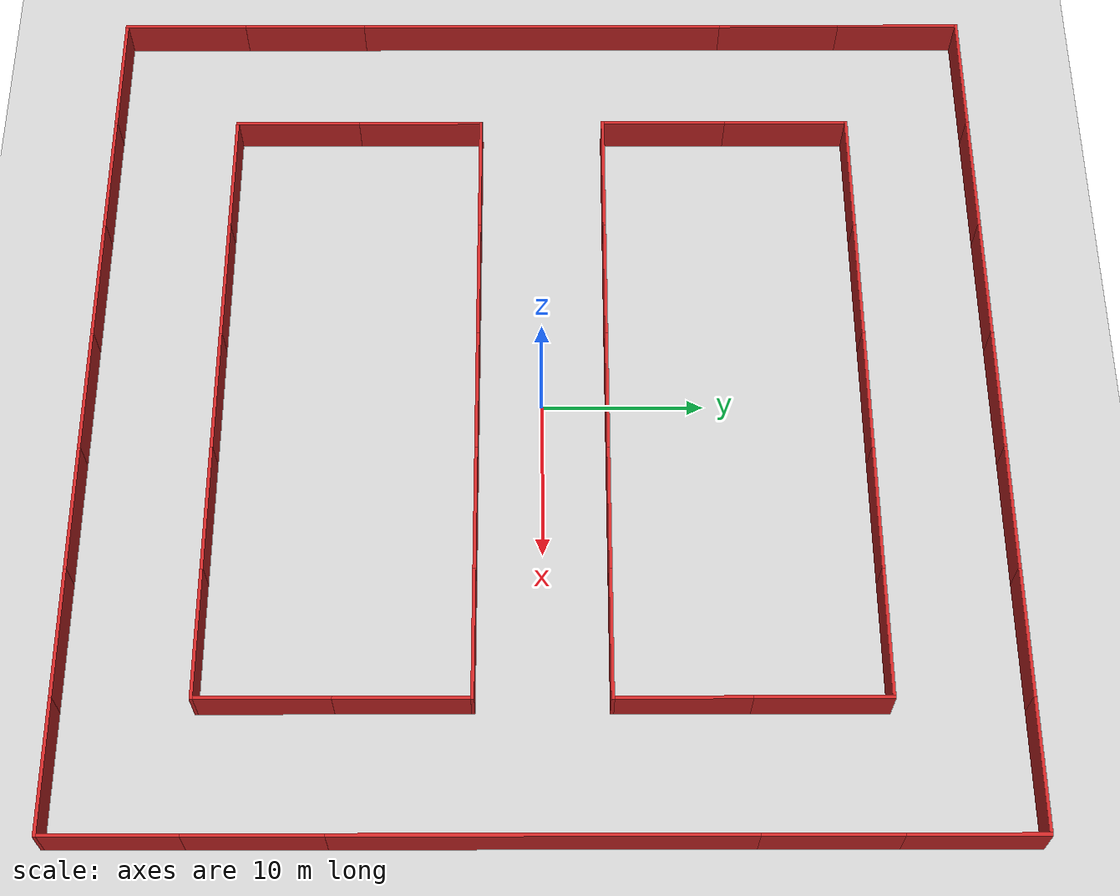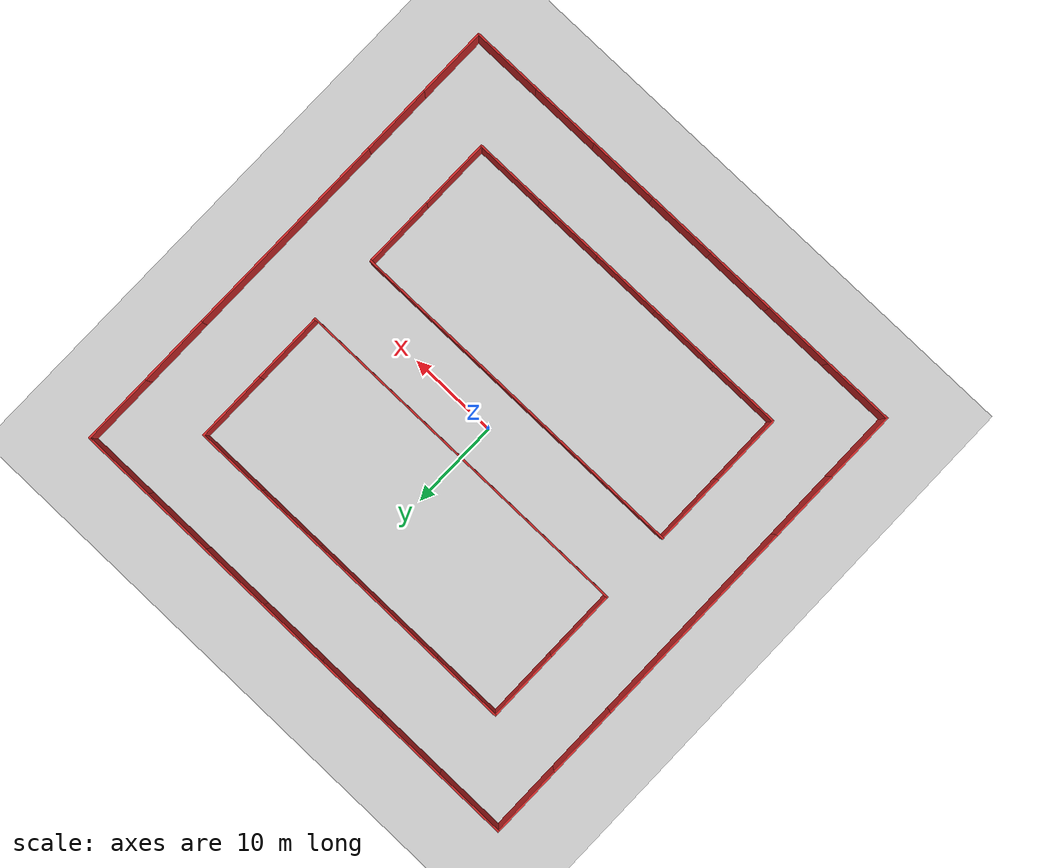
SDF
<sdf version="1.4">
 <world name="default">
  <light name="sun" type="directional">
   <pose>0 0 10 0 -0 0</pose>
   <diffuse>0.8 0.8 0.8 1</diffuse>
   <specular>0.2 0.2 0.2 1</specular>
   <attenuation>
    <range>1000</range>
    <constant>0.9</constant>
    <linear>0.01</linear>
    <quadratic>0.001</quadratic>
   </attenuation>
   <direction>-0.5 0.1 -0.9</direction>
  </light>
  <model name="ground_plane">
   <static>1</static>
   <link name="link">
    <collision name="collision">
     <geometry><plane><normal>0 0 1</normal><size>100 100</size></plane></geometry>
     <surface><friction><ode><mu>100</mu><mu2>50</mu2></ode></friction></surface>
    </collision>
    <visual name="visual">
     <cast_shadows>0</cast_shadows>
     <geometry><plane><normal>0 0 1</normal><size>100 100</size></plane></geometry>
     <material>
      <script><uri>file://media/materials/scripts/gazebo.material</uri><name>Gazebo/Grey</name></script>
     </material>
    </visual>
    <velocity_decay><linear>0</linear><angular>0</angular></velocity_decay>
   </link>
  </model>
  <physics type="ode">
   <max_step_size>0.001</max_step_size>
   <real_time_factor>1</real_time_factor>
   <real_time_update_rate>1000</real_time_update_rate>
   <gravity>0 0 -9.8</gravity>
  </physics>
  <scene><ambient>0.4 0.4 0.4 1</ambient><background>0.7 0.7 0.7 1</background><shadows>1</shadows></scene>
  <spherical_coordinates>
   <surface_model>EARTH_WGS84</surface_model>
   <latitude_deg>0</latitude_deg>
   <longitude_deg>0</longitude_deg>
   <elevation>0</elevation>
   <heading_deg>0</heading_deg>
  </spherical_coordinates>
  <model name="staright_8m">
   <link name="Wall_26">
    <collision name="Wall_26_Collision">
     <geometry><box><size>8 0.2 2.5</size></box></geometry>
     <pose>0 0 1.25 0 -0 0</pose>
    </collision>
    <visual name="Wall_26_Visual">
     <pose>0 0 1.25 0 -0 0</pose>
     <geometry><box><size>8 0.2 2.5</size></box></geometry>
     <material>
      <script>
       <uri>model://materials/scripts</uri>
       <uri>model://materials/textures</uri>
       <name>vrc/red_wall</name>
      </script>
     </material>
    </visual>
    <velocity_decay><linear>0</linear><angular>0</angular></velocity_decay>
    <pose>0 -4 0 0 -0 0</pose>
   </link>
   <link name="Wall_28">
    <collision name="Wall_28_Collision">
     <geometry><box><size>8 0.2 2.5</size></box></geometry>
     <pose>0 0 1.25 0 -0 0</pose>
    </collision>
    <visual name="Wall_28_Visual">
     <pose>0 0 1.25 0 -0 0</pose>
     <geometry><box><size>8 0.2 2.5</size></box></geometry>
     <material>
      <script>
       <uri>model://materials/scripts</uri>
       <uri>model://materials/textures</uri>
       <name>vrc/red_wall</name>
      </script>
     </material>
    </visual>
    <velocity_decay><linear>0</linear><angular>0</angular></velocity_decay>
    <pose>0 4 0 0 -0 0</pose>
   </link>
   <static>1</static>
  </model>
  <model name="staright_8m_0">
   <link name="Wall_26">
    <collision name="Wall_26_Collision">
     <geometry><box><size>8 0.2 2.5</size></box></geometry>
     <pose>0 0 1.25 0 -0 0</pose>
    </collision>
    <visual name="Wall_26_Visual">
     <pose>0 0 1.25 0 -0 0</pose>
     <geometry><box><size>8 0.2 2.5</size></box></geometry>
     <material>
      <script>
       <uri>model://materials/scripts</uri>
       <uri>model://materials/textures</uri>
       <name>vrc/red_wall</name>
      </script>
     </material>
    </visual>
    <velocity_decay><linear>0</linear><angular>0</angular></velocity_decay>
    <pose>0 -4 0 0 -0 0</pose>
   </link>
   <link name="Wall_28">
    <collision name="Wall_28_Collision">
     <geometry><box><size>8 0.2 2.5</size></box></geometry>
     <pose>0 0 1.25 0 -0 0</pose>
    </collision>
    <visual name="Wall_28_Visual">
     <pose>0 0 1.25 0 -0 0</pose>
     <geometry><box><size>8 0.2 2.5</size></box></geometry>
     <material>
      <script>
       <uri>model://materials/scripts</uri>
       <uri>model://materials/textures</uri>
       <name>vrc/red_wall</name>
      </script>
     </material>
    </visual>
    <velocity_decay><linear>0</linear><angular>0</angular></velocity_decay>
    <pose>0 4 0 0 -0 0</pose>
   </link>
   <static>1</static>
   <pose>8 0 0 0 -0 0</pose>
  </model>
  <model name="model_1">
   <link name="Wall_1">
    <collision name="Wall_1_Collision">
     <geometry><box><size>24 0.2 2.5</size></box></geometry>
     <pose>0 0 1.25 0 -0 0</pose>
    </collision>
    <visual name="Wall_1_Visual">
     <pose>0 0 1.25 0 -0 0</pose>
     <geometry><box><size>24 0.2 2.5</size></box></geometry>
     <material>
      <script>
       <uri>model://materials/scripts</uri>
       <uri>model://materials/textures</uri>
       <name>vrc/red_wall</name>
      </script>
     </material>
    </visual>
    <velocity_decay><linear>0</linear><angular>0</angular></velocity_decay>
    <pose>0 8 0 0 -0 0</pose>
   </link>
   <link name="Wall_11">
    <collision name="Wall_11_Collision">
     <geometry><box><size>8.1 0.2 2.5</size></box></geometry>
     <pose>0 0 1.25 0 -0 0</pose>
    </collision>
    <visual name="Wall_11_Visual">
     <pose>0 0 1.25 0 -0 0</pose>
     <geometry><box><size>8.1 0.2 2.5</size></box></geometry>
     <material>
      <script>
       <uri>model://materials/scripts</uri>
       <uri>model://materials/textures</uri>
       <name>vrc/red_wall</name>
      </script>
     </material>
    </visual>
    <velocity_decay><linear>0</linear><angular>0</angular></velocity_decay>
    <pose>-4 -3.95 0 0 0 -1.5708</pose>
   </link>
   <link name="Wall_13">
    <collision name="Wall_13_Collision">
     <geometry><box><size>8.1 0.2 2.5</size></box></geometry>
     <pose>0 0 1.25 0 -0 0</pose>
    </collision>
    <visual name="Wall_13_Visual">
     <pose>0 0 1.25 0 -0 0</pose>
     <geometry><box><size>8.1 0.2 2.5</size></box></geometry>
     <material>
      <script>
       <uri>model://materials/scripts</uri>
       <uri>model://materials/textures</uri>
       <name>vrc/red_wall</name>
      </script>
     </material>
    </visual>
    <velocity_decay><linear>0</linear><angular>0</angular></velocity_decay>
    <pose>4 -3.95 0 0 0 -1.5708</pose>
   </link>
   <link name="Wall_15">
    <collision name="Wall_15_Collision">
     <geometry><box><size>7.9 0.2 2.5</size></box></geometry>
     <pose>0 0 1.25 0 -0 0</pose>
    </collision>
    <visual name="Wall_15_Visual">
     <pose>0 0 1.25 0 -0 0</pose>
     <geometry><box><size>7.9 0.2 2.5</size></box></geometry>
     <material>
      <script>
       <uri>model://materials/scripts</uri>
       <uri>model://materials/textures</uri>
       <name>vrc/red_wall</name>
      </script>
     </material>
    </visual>
    <velocity_decay><linear>0</linear><angular>0</angular></velocity_decay>
    <pose>8.05 0 0 0 -0 0</pose>
   </link>
   <link name="Wall_9">
    <collision name="Wall_9_Collision">
     <geometry><box><size>7.9 0.2 2.5</size></box></geometry>
     <pose>0 0 1.25 0 -0 0</pose>
    </collision>
    <visual name="Wall_9_Visual">
     <pose>0 0 1.25 0 -0 0</pose>
     <geometry><box><size>7.9 0.2 2.5</size></box></geometry>
     <material>
      <script>
       <uri>model://materials/scripts</uri>
       <uri>model://materials/textures</uri>
       <name>vrc/red_wall</name>
      </script>
     </material>
    </visual>
    <velocity_decay><linear>0</linear><angular>0</angular></velocity_decay>
    <pose>-8.05 0 0 0 -0 0</pose>
   </link>
   <static>1</static>
   <pose>20 0 0 0 0 -1.5708</pose>
  </model>
  <model name="model_2">
   <link name="Wall_10">
    <collision name="Wall_10_Collision">
     <geometry><box><size>8.1 0.2 2.5</size></box></geometry>
     <pose>0 0 1.25 0 -0 0</pose>
    </collision>
    <visual name="Wall_10_Visual">
     <pose>0 0 1.25 0 -0 0</pose>
     <geometry><box><size>8.1 0.2 2.5</size></box></geometry>
     <material>
      <script>
       <uri>model://materials/scripts</uri>
       <uri>model://materials/textures</uri>
       <name>vrc/red_wall</name>
      </script>
     </material>
    </visual>
    <velocity_decay><linear>0</linear><angular>0</angular></velocity_decay>
    <pose>4.05 -8 0 0 -0 0</pose>
   </link>
   <link name="Wall_14">
    <collision name="Wall_14_Collision">
     <geometry><box><size>7.9 0.2 2.5</size></box></geometry>
     <pose>0 0 1.25 0 -0 0</pose>
    </collision>
    <visual name="Wall_14_Visual">
     <pose>0 0 1.25 0 -0 0</pose>
     <geometry><box><size>7.9 0.2 2.5</size></box></geometry>
     <material>
      <script>
       <uri>model://materials/scripts</uri>
       <uri>model://materials/textures</uri>
       <name>vrc/red_wall</name>
      </script>
     </material>
    </visual>
    <velocity_decay><linear>0</linear><angular>0</angular></velocity_decay>
    <pose>8 -3.95 0 0 -0 1.5708</pose>
   </link>
   <link name="Wall_16">
    <collision name="Wall_16_Collision">
     <geometry><box><size>8 0.2 2.5</size></box></geometry>
     <pose>0 0 1.25 0 -0 0</pose>
    </collision>
    <visual name="Wall_16_Visual">
     <pose>0 0 1.25 0 -0 0</pose>
     <geometry><box><size>8 0.2 2.5</size></box></geometry>
     <material>
      <script>
       <uri>model://materials/scripts</uri>
       <uri>model://materials/textures</uri>
       <name>vrc/red_wall</name>
      </script>
     </material>
    </visual>
    <velocity_decay><linear>0</linear><angular>0</angular></velocity_decay>
    <pose>8 4 0 0 -0 1.5708</pose>
   </link>
   <link name="Wall_18">
    <collision name="Wall_18_Collision">
     <geometry><box><size>8.1 0.2 2.5</size></box></geometry>
     <pose>0 0 1.25 0 -0 0</pose>
    </collision>
    <visual name="Wall_18_Visual">
     <pose>0 0 1.25 0 -0 0</pose>
     <geometry><box><size>8.1 0.2 2.5</size></box></geometry>
     <material>
      <script>
       <uri>model://materials/scripts</uri>
       <uri>model://materials/textures</uri>
       <name>vrc/red_wall</name>
      </script>
     </material>
    </visual>
    <velocity_decay><linear>0</linear><angular>0</angular></velocity_decay>
    <pose>-3.95 0 0 0 -0 0</pose>
   </link>
   <link name="Wall_20">
    <collision name="Wall_20_Collision">
     <geometry><box><size>7.9 0.2 2.5</size></box></geometry>
     <pose>0 0 1.25 0 -0 0</pose>
    </collision>
    <visual name="Wall_20_Visual">
     <pose>0 0 1.25 0 -0 0</pose>
     <geometry><box><size>7.9 0.2 2.5</size></box></geometry>
     <material>
      <script>
       <uri>model://materials/scripts</uri>
       <uri>model://materials/textures</uri>
       <name>vrc/red_wall</name>
      </script>
     </material>
    </visual>
    <velocity_decay><linear>0</linear><angular>0</angular></velocity_decay>
    <pose>0 4.05 0 0 -0 1.5708</pose>
   </link>
   <link name="Wall_8">
    <collision name="Wall_8_Collision">
     <geometry><box><size>8 0.2 2.5</size></box></geometry>
     <pose>0 0 1.25 0 -0 0</pose>
    </collision>
    <visual name="Wall_8_Visual">
     <pose>0 0 1.25 0 -0 0</pose>
     <geometry><box><size>8 0.2 2.5</size></box></geometry>
     <material>
      <script>
       <uri>model://materials/scripts</uri>
       <uri>model://materials/textures</uri>
       <name>vrc/red_wall</name>
      </script>
     </material>
    </visual>
    <velocity_decay><linear>0</linear><angular>0</angular></velocity_decay>
    <pose>-4 -8 0 0 -0 0</pose>
   </link>
   <static>1</static>
   <pose>20 -20 0 0 -0 0</pose>
  </model>
  <model name="model_3">
   <link name="Wall_10">
    <collision name="Wall_10_Collision">
     <geometry><box><size>8.1 0.2 2.5</size></box></geometry>
     <pose>0 0 1.25 0 -0 0</pose>
    </collision>
    <visual name="Wall_10_Visual">
     <pose>0 0 1.25 0 -0 0</pose>
     <geometry><box><size>8.1 0.2 2.5</size></box></geometry>
     <material>
      <script>
       <uri>model://materials/scripts</uri>
       <uri>model://materials/textures</uri>
       <name>vrc/red_wall</name>
      </script>
     </material>
    </visual>
    <velocity_decay><linear>0</linear><angular>0</angular></velocity_decay>
    <pose>4.05 -8 0 0 -0 0</pose>
   </link>
   <link name="Wall_14">
    <collision name="Wall_14_Collision">
     <geometry><box><size>7.9 0.2 2.5</size></box></geometry>
     <pose>0 0 1.25 0 -0 0</pose>
    </collision>
    <visual name="Wall_14_Visual">
     <pose>0 0 1.25 0 -0 0</pose>
     <geometry><box><size>7.9 0.2 2.5</size></box></geometry>
     <material>
      <script>
       <uri>model://materials/scripts</uri>
       <uri>model://materials/textures</uri>
       <name>vrc/red_wall</name>
      </script>
     </material>
    </visual>
    <velocity_decay><linear>0</linear><angular>0</angular></velocity_decay>
    <pose>8 -3.95 0 0 -0 1.5708</pose>
   </link>
   <link name="Wall_16">
    <collision name="Wall_16_Collision">
     <geometry><box><size>8 0.2 2.5</size></box></geometry>
     <pose>0 0 1.25 0 -0 0</pose>
    </collision>
    <visual name="Wall_16_Visual">
     <pose>0 0 1.25 0 -0 0</pose>
     <geometry><box><size>8 0.2 2.5</size></box></geometry>
     <material>
      <script>
       <uri>model://materials/scripts</uri>
       <uri>model://materials/textures</uri>
       <name>vrc/red_wall</name>
      </script>
     </material>
    </visual>
    <velocity_decay><linear>0</linear><angular>0</angular></velocity_decay>
    <pose>8 4 0 0 -0 1.5708</pose>
   </link>
   <link name="Wall_18">
    <collision name="Wall_18_Collision">
     <geometry><box><size>8.1 0.2 2.5</size></box></geometry>
     <pose>0 0 1.25 0 -0 0</pose>
    </collision>
    <visual name="Wall_18_Visual">
     <pose>0 0 1.25 0 -0 0</pose>
     <geometry><box><size>8.1 0.2 2.5</size></box></geometry>
     <material>
      <script>
       <uri>model://materials/scripts</uri>
       <uri>model://materials/textures</uri>
       <name>vrc/red_wall</name>
      </script>
     </material>
    </visual>
    <velocity_decay><linear>0</linear><angular>0</angular></velocity_decay>
    <pose>-3.95 0 0 0 -0 0</pose>
   </link>
   <link name="Wall_20">
    <collision name="Wall_20_Collision">
     <geometry><box><size>7.9 0.2 2.5</size></box></geometry>
     <pose>0 0 1.25 0 -0 0</pose>
    </collision>
    <visual name="Wall_20_Visual">
     <pose>0 0 1.25 0 -0 0</pose>
     <geometry><box><size>7.9 0.2 2.5</size></box></geometry>
     <material>
      <script>
       <uri>model://materials/scripts</uri>
       <uri>model://materials/textures</uri>
       <name>vrc/red_wall</name>
      </script>
     </material>
    </visual>
    <velocity_decay><linear>0</linear><angular>0</angular></velocity_decay>
    <pose>0 4.05 0 0 -0 1.5708</pose>
   </link>
   <link name="Wall_8">
    <collision name="Wall_8_Collision">
     <geometry><box><size>8 0.2 2.5</size></box></geometry>
     <pose>0 0 1.25 0 -0 0</pose>
    </collision>
    <visual name="Wall_8_Visual">
     <pose>0 0 1.25 0 -0 0</pose>
     <geometry><box><size>8 0.2 2.5</size></box></geometry>
     <material>
      <script>
       <uri>model://materials/scripts</uri>
       <uri>model://materials/textures</uri>
       <name>vrc/red_wall</name>
      </script>
     </material>
    </visual>
    <velocity_decay><linear>0</linear><angular>0</angular></velocity_decay>
    <pose>-4 -8 0 0 -0 0</pose>
   </link>
   <static>1</static>
   <pose>20 20 0 0 -0 1.5708</pose>
  </model>
  <model name="staright_16m">
   <link name="Wall_26">
    <collision name="Wall_26_Collision">
     <geometry><box><size>8 0.2 2.5</size></box></geometry>
     <pose>0 0 1.25 0 -0 0</pose>
    </collision>
    <visual name="Wall_26_Visual">
     <pose>0 0 1.25 0 -0 0</pose>
     <geometry><box><size>8 0.2 2.5</size></box></geometry>
     <material>
      <script>
       <uri>model://materials/scripts</uri>
       <uri>model://materials/textures</uri>
       <name>vrc/red_wall</name>
      </script>
     </material>
    </visual>
    <velocity_decay><linear>0</linear><angular>0</angular></velocity_decay>
    <pose>-4 -4 0 0 -0 0</pose>
   </link>
   <link name="Wall_28">
    <collision name="Wall_28_Collision">
     <geometry><box><size>8 0.2 2.5</size></box></geometry>
     <pose>0 0 1.25 0 -0 0</pose>
    </collision>
    <visual name="Wall_28_Visual">
     <pose>0 0 1.25 0 -0 0</pose>
     <geometry><box><size>8 0.2 2.5</size></box></geometry>
     <material>
      <script>
       <uri>model://materials/scripts</uri>
       <uri>model://materials/textures</uri>
       <name>vrc/red_wall</name>
      </script>
     </material>
    </visual>
    <velocity_decay><linear>0</linear><angular>0</angular></velocity_decay>
    <pose>-4 4 0 0 -0 0</pose>
   </link>
   <static>1</static>
   <link name="Wall_27">
    <collision name="Wall_26_Collision">
     <geometry><box><size>8 0.2 2.5</size></box></geometry>
     <pose>0 0 1.25 0 -0 0</pose>
    </collision>
    <visual name="Wall_26_Visual">
     <pose>0 0 1.25 0 -0 0</pose>
     <geometry><box><size>8 0.2 2.5</size></box></geometry>
     <material>
      <script>
       <uri>model://materials/scripts</uri>
       <uri>model://materials/textures</uri>
       <name>vrc/red_wall</name>
      </script>
     </material>
    </visual>
    <velocity_decay><linear>0</linear><angular>0</angular></velocity_decay>
    <pose>4 -4 0 0 -0 0</pose>
   </link>
   <link name="Wall_29">
    <collision name="Wall_28_Collision">
     <geometry><box><size>8 0.2 2.5</size></box></geometry>
     <pose>0 0 1.25 0 -0 0</pose>
    </collision>
    <visual name="Wall_28_Visual">
     <pose>0 0 1.25 0 -0 0</pose>
     <geometry><box><size>8 0.2 2.5</size></box></geometry>
     <material>
      <script>
       <uri>model://materials/scripts</uri>
       <uri>model://materials/textures</uri>
       <name>vrc/red_wall</name>
      </script>
     </material>
    </visual>
    <velocity_decay><linear>0</linear><angular>0</angular></velocity_decay>
    <pose>4 4 0 0 -0 0</pose>
   </link>
   <static>1</static>
   <pose>4 24 0 0 -0 0</pose>
  </model>
  <model name="staright_16m_0">
   <link name="Wall_26">
    <collision name="Wall_26_Collision">
     <geometry><box><size>8 0.2 2.5</size></box></geometry>
     <pose>0 0 1.25 0 -0 0</pose>
    </collision>
    <visual name="Wall_26_Visual">
     <pose>0 0 1.25 0 -0 0</pose>
     <geometry><box><size>8 0.2 2.5</size></box></geometry>
     <material>
      <script>
       <uri>model://materials/scripts</uri>
       <uri>model://materials/textures</uri>
       <name>vrc/red_wall</name>
      </script>
     </material>
    </visual>
    <velocity_decay><linear>0</linear><angular>0</angular></velocity_decay>
    <pose>-4 -4 0 0 -0 0</pose>
   </link>
   <link name="Wall_28">
    <collision name="Wall_28_Collision">
     <geometry><box><size>8 0.2 2.5</size></box></geometry>
     <pose>0 0 1.25 0 -0 0</pose>
    </collision>
    <visual name="Wall_28_Visual">
     <pose>0 0 1.25 0 -0 0</pose>
     <geometry><box><size>8 0.2 2.5</size></box></geometry>
     <material>
      <script>
       <uri>model://materials/scripts</uri>
       <uri>model://materials/textures</uri>
       <name>vrc/red_wall</name>
      </script>
     </material>
    </visual>
    <velocity_decay><linear>0</linear><angular>0</angular></velocity_decay>
    <pose>-4 4 0 0 -0 0</pose>
   </link>
   <static>1</static>
   <link name="Wall_27">
    <collision name="Wall_26_Collision">
     <geometry><box><size>8 0.2 2.5</size></box></geometry>
     <pose>0 0 1.25 0 -0 0</pose>
    </collision>
    <visual name="Wall_26_Visual">
     <pose>0 0 1.25 0 -0 0</pose>
     <geometry><box><size>8 0.2 2.5</size></box></geometry>
     <material>
      <script>
       <uri>model://materials/scripts</uri>
       <uri>model://materials/textures</uri>
       <name>vrc/red_wall</name>
      </script>
     </material>
    </visual>
    <velocity_decay><linear>0</linear><angular>0</angular></velocity_decay>
    <pose>4 -4 0 0 -0 0</pose>
   </link>
   <link name="Wall_29">
    <collision name="Wall_28_Collision">
     <geometry><box><size>8 0.2 2.5</size></box></geometry>
     <pose>0 0 1.25 0 -0 0</pose>
    </collision>
    <visual name="Wall_28_Visual">
     <pose>0 0 1.25 0 -0 0</pose>
     <geometry><box><size>8 0.2 2.5</size></box></geometry>
     <material>
      <script>
       <uri>model://materials/scripts</uri>
       <uri>model://materials/textures</uri>
       <name>vrc/red_wall</name>
      </script>
     </material>
    </visual>
    <velocity_decay><linear>0</linear><angular>0</angular></velocity_decay>
    <pose>4 4 0 0 -0 0</pose>
   </link>
   <static>1</static>
   <pose>4 -24 0 0 -0 0</pose>
  </model>
  <model name="staright_8m_2">
   <link name="Wall_26">
    <collision name="Wall_26_Collision">
     <geometry><box><size>8 0.2 2.5</size></box></geometry>
     <pose>0 0 1.25 0 -0 0</pose>
    </collision>
    <visual name="Wall_26_Visual">
     <pose>0 0 1.25 0 -0 0</pose>
     <geometry><box><size>8 0.2 2.5</size></box></geometry>
     <material>
      <script>
       <uri>model://materials/scripts</uri>
       <uri>model://materials/textures</uri>
       <name>vrc/red_wall</name>
      </script>
     </material>
    </visual>
    <velocity_decay><linear>0</linear><angular>0</angular></velocity_decay>
    <pose>0 -4 0 0 -0 0</pose>
   </link>
   <link name="Wall_28">
    <collision name="Wall_28_Collision">
     <geometry><box><size>8 0.2 2.5</size></box></geometry>
     <pose>0 0 1.25 0 -0 0</pose>
    </collision>
    <visual name="Wall_28_Visual">
     <pose>0 0 1.25 0 -0 0</pose>
     <geometry><box><size>8 0.2 2.5</size></box></geometry>
     <material>
      <script>
       <uri>model://materials/scripts</uri>
       <uri>model://materials/textures</uri>
       <name>vrc/red_wall</name>
      </script>
     </material>
    </visual>
    <velocity_decay><linear>0</linear><angular>0</angular></velocity_decay>
    <pose>0 4 0 0 -0 0</pose>
   </link>
   <static>1</static>
   <pose>-8 0 0 0 -0 0</pose>
  </model>
  <model name="model_4">
   <link name="Wall_1">
    <collision name="Wall_1_Collision">
     <geometry><box><size>24 0.2 2.5</size></box></geometry>
     <pose>0 0 1.25 0 -0 0</pose>
    </collision>
    <visual name="Wall_1_Visual">
     <pose>0 0 1.25 0 -0 0</pose>
     <geometry><box><size>24 0.2 2.5</size></box></geometry>
     <material>
      <script>
       <uri>model://materials/scripts</uri>
       <uri>model://materials/textures</uri>
       <name>vrc/red_wall</name>
      </script>
     </material>
    </visual>
    <velocity_decay><linear>0</linear><angular>0</angular></velocity_decay>
    <pose>0 8 0 0 -0 0</pose>
   </link>
   <link name="Wall_11">
    <collision name="Wall_11_Collision">
     <geometry><box><size>8.1 0.2 2.5</size></box></geometry>
     <pose>0 0 1.25 0 -0 0</pose>
    </collision>
    <visual name="Wall_11_Visual">
     <pose>0 0 1.25 0 -0 0</pose>
     <geometry><box><size>8.1 0.2 2.5</size></box></geometry>
     <material>
      <script>
       <uri>model://materials/scripts</uri>
       <uri>model://materials/textures</uri>
       <name>vrc/red_wall</name>
      </script>
     </material>
    </visual>
    <velocity_decay><linear>0</linear><angular>0</angular></velocity_decay>
    <pose>-4 -3.95 0 0 0 -1.5708</pose>
   </link>
   <link name="Wall_13">
    <collision name="Wall_13_Collision">
     <geometry><box><size>8.1 0.2 2.5</size></box></geometry>
     <pose>0 0 1.25 0 -0 0</pose>
    </collision>
    <visual name="Wall_13_Visual">
     <pose>0 0 1.25 0 -0 0</pose>
     <geometry><box><size>8.1 0.2 2.5</size></box></geometry>
     <material>
      <script>
       <uri>model://materials/scripts</uri>
       <uri>model://materials/textures</uri>
       <name>vrc/red_wall</name>
      </script>
     </material>
    </visual>
    <velocity_decay><linear>0</linear><angular>0</angular></velocity_decay>
    <pose>4 -3.95 0 0 0 -1.5708</pose>
   </link>
   <link name="Wall_15">
    <collision name="Wall_15_Collision">
     <geometry><box><size>7.9 0.2 2.5</size></box></geometry>
     <pose>0 0 1.25 0 -0 0</pose>
    </collision>
    <visual name="Wall_15_Visual">
     <pose>0 0 1.25 0 -0 0</pose>
     <geometry><box><size>7.9 0.2 2.5</size></box></geometry>
     <material>
      <script>
       <uri>model://materials/scripts</uri>
       <uri>model://materials/textures</uri>
       <name>vrc/red_wall</name>
      </script>
     </material>
    </visual>
    <velocity_decay><linear>0</linear><angular>0</angular></velocity_decay>
    <pose>8.05 0 0 0 -0 0</pose>
   </link>
   <link name="Wall_9">
    <collision name="Wall_9_Collision">
     <geometry><box><size>7.9 0.2 2.5</size></box></geometry>
     <pose>0 0 1.25 0 -0 0</pose>
    </collision>
    <visual name="Wall_9_Visual">
     <pose>0 0 1.25 0 -0 0</pose>
     <geometry><box><size>7.9 0.2 2.5</size></box></geometry>
     <material>
      <script>
       <uri>model://materials/scripts</uri>
       <uri>model://materials/textures</uri>
       <name>vrc/red_wall</name>
      </script>
     </material>
    </visual>
    <velocity_decay><linear>0</linear><angular>0</angular></velocity_decay>
    <pose>-8.05 0 0 0 -0 0</pose>
   </link>
   <static>1</static>
   <pose>-20 0 0 0 -0 1.5708</pose>
  </model>
  <model name="model_5">
   <link name="Wall_10">
    <collision name="Wall_10_Collision">
     <geometry><box><size>8.1 0.2 2.5</size></box></geometry>
     <pose>0 0 1.25 0 -0 0</pose>
    </collision>
    <visual name="Wall_10_Visual">
     <pose>0 0 1.25 0 -0 0</pose>
     <geometry><box><size>8.1 0.2 2.5</size></box></geometry>
     <material>
      <script>
       <uri>model://materials/scripts</uri>
       <uri>model://materials/textures</uri>
       <name>vrc/red_wall</name>
      </script>
     </material>
    </visual>
    <velocity_decay><linear>0</linear><angular>0</angular></velocity_decay>
    <pose>4.05 -8 0 0 -0 0</pose>
   </link>
   <link name="Wall_14">
    <collision name="Wall_14_Collision">
     <geometry><box><size>7.9 0.2 2.5</size></box></geometry>
     <pose>0 0 1.25 0 -0 0</pose>
    </collision>
    <visual name="Wall_14_Visual">
     <pose>0 0 1.25 0 -0 0</pose>
     <geometry><box><size>7.9 0.2 2.5</size></box></geometry>
     <material>
      <script>
       <uri>model://materials/scripts</uri>
       <uri>model://materials/textures</uri>
       <name>vrc/red_wall</name>
      </script>
     </material>
    </visual>
    <velocity_decay><linear>0</linear><angular>0</angular></velocity_decay>
    <pose>8 -3.95 0 0 -0 1.5708</pose>
   </link>
   <link name="Wall_16">
    <collision name="Wall_16_Collision">
     <geometry><box><size>8 0.2 2.5</size></box></geometry>
     <pose>0 0 1.25 0 -0 0</pose>
    </collision>
    <visual name="Wall_16_Visual">
     <pose>0 0 1.25 0 -0 0</pose>
     <geometry><box><size>8 0.2 2.5</size></box></geometry>
     <material>
      <script>
       <uri>model://materials/scripts</uri>
       <uri>model://materials/textures</uri>
       <name>vrc/red_wall</name>
      </script>
     </material>
    </visual>
    <velocity_decay><linear>0</linear><angular>0</angular></velocity_decay>
    <pose>8 4 0 0 -0 1.5708</pose>
   </link>
   <link name="Wall_18">
    <collision name="Wall_18_Collision">
     <geometry><box><size>8.1 0.2 2.5</size></box></geometry>
     <pose>0 0 1.25 0 -0 0</pose>
    </collision>
    <visual name="Wall_18_Visual">
     <pose>0 0 1.25 0 -0 0</pose>
     <geometry><box><size>8.1 0.2 2.5</size></box></geometry>
     <material>
      <script>
       <uri>model://materials/scripts</uri>
       <uri>model://materials/textures</uri>
       <name>vrc/red_wall</name>
      </script>
     </material>
    </visual>
    <velocity_decay><linear>0</linear><angular>0</angular></velocity_decay>
    <pose>-3.95 0 0 0 -0 0</pose>
   </link>
   <link name="Wall_20">
    <collision name="Wall_20_Collision">
     <geometry><box><size>7.9 0.2 2.5</size></box></geometry>
     <pose>0 0 1.25 0 -0 0</pose>
    </collision>
    <visual name="Wall_20_Visual">
     <pose>0 0 1.25 0 -0 0</pose>
     <geometry><box><size>7.9 0.2 2.5</size></box></geometry>
     <material>
      <script>
       <uri>model://materials/scripts</uri>
       <uri>model://materials/textures</uri>
       <name>vrc/red_wall</name>
      </script>
     </material>
    </visual>
    <velocity_decay><linear>0</linear><angular>0</angular></velocity_decay>
    <pose>0 4.05 0 0 -0 1.5708</pose>
   </link>
   <link name="Wall_8">
    <collision name="Wall_8_Collision">
     <geometry><box><size>8 0.2 2.5</size></box></geometry>
     <pose>0 0 1.25 0 -0 0</pose>
    </collision>
    <visual name="Wall_8_Visual">
     <pose>0 0 1.25 0 -0 0</pose>
     <geometry><box><size>8 0.2 2.5</size></box></geometry>
     <material>
      <script>
       <uri>model://materials/scripts</uri>
       <uri>model://materials/textures</uri>
       <name>vrc/red_wall</name>
      </script>
     </material>
    </visual>
    <velocity_decay><linear>0</linear><angular>0</angular></velocity_decay>
    <pose>-4 -8 0 0 -0 0</pose>
   </link>
   <static>1</static>
   <pose>-20 20 0 0 0 -3.14159</pose>
  </model>
  <model name="staright_8m_3">
   <link name="Wall_26">
    <collision name="Wall_26_Collision">
     <geometry><box><size>8 0.2 2.5</size></box></geometry>
     <pose>0 0 1.25 0 -0 0</pose>
    </collision>
    <visual name="Wall_26_Visual">
     <pose>0 0 1.25 0 -0 0</pose>
     <geometry><box><size>8 0.2 2.5</size></box></geometry>
     <material>
      <script>
       <uri>model://materials/scripts</uri>
       <uri>model://materials/textures</uri>
       <name>vrc/red_wall</name>
      </script>
     </material>
    </visual>
    <velocity_decay><linear>0</linear><angular>0</angular></velocity_decay>
    <pose>0 -4 0 0 -0 0</pose>
   </link>
   <link name="Wall_28">
    <collision name="Wall_28_Collision">
     <geometry><box><size>8 0.2 2.5</size></box></geometry>
     <pose>0 0 1.25 0 -0 0</pose>
    </collision>
    <visual name="Wall_28_Visual">
     <pose>0 0 1.25 0 -0 0</pose>
     <geometry><box><size>8 0.2 2.5</size></box></geometry>
     <material>
      <script>
       <uri>model://materials/scripts</uri>
       <uri>model://materials/textures</uri>
       <name>vrc/red_wall</name>
      </script>
     </material>
    </visual>
    <velocity_decay><linear>0</linear><angular>0</angular></velocity_decay>
    <pose>0 4 0 0 -0 0</pose>
   </link>
   <static>1</static>
   <pose>-8 24 0 0 -0 0</pose>
  </model>
  <model name="model_6">
   <link name="Wall_10">
    <collision name="Wall_10_Collision">
     <geometry><box><size>8.1 0.2 2.5</size></box></geometry>
     <pose>0 0 1.25 0 -0 0</pose>
    </collision>
    <visual name="Wall_10_Visual">
     <pose>0 0 1.25 0 -0 0</pose>
     <geometry><box><size>8.1 0.2 2.5</size></box></geometry>
     <material>
      <script>
       <uri>model://materials/scripts</uri>
       <uri>model://materials/textures</uri>
       <name>vrc/red_wall</name>
      </script>
     </material>
    </visual>
    <velocity_decay><linear>0</linear><angular>0</angular></velocity_decay>
    <pose>4.05 -8 0 0 -0 0</pose>
   </link>
   <link name="Wall_14">
    <collision name="Wall_14_Collision">
     <geometry><box><size>7.9 0.2 2.5</size></box></geometry>
     <pose>0 0 1.25 0 -0 0</pose>
    </collision>
    <visual name="Wall_14_Visual">
     <pose>0 0 1.25 0 -0 0</pose>
     <geometry><box><size>7.9 0.2 2.5</size></box></geometry>
     <material>
      <script>
       <uri>model://materials/scripts</uri>
       <uri>model://materials/textures</uri>
       <name>vrc/red_wall</name>
      </script>
     </material>
    </visual>
    <velocity_decay><linear>0</linear><angular>0</angular></velocity_decay>
    <pose>8 -3.95 0 0 -0 1.5708</pose>
   </link>
   <link name="Wall_16">
    <collision name="Wall_16_Collision">
     <geometry><box><size>8 0.2 2.5</size></box></geometry>
     <pose>0 0 1.25 0 -0 0</pose>
    </collision>
    <visual name="Wall_16_Visual">
     <pose>0 0 1.25 0 -0 0</pose>
     <geometry><box><size>8 0.2 2.5</size></box></geometry>
     <material>
      <script>
       <uri>model://materials/scripts</uri>
       <uri>model://materials/textures</uri>
       <name>vrc/red_wall</name>
      </script>
     </material>
    </visual>
    <velocity_decay><linear>0</linear><angular>0</angular></velocity_decay>
    <pose>8 4 0 0 -0 1.5708</pose>
   </link>
   <link name="Wall_18">
    <collision name="Wall_18_Collision">
     <geometry><box><size>8.1 0.2 2.5</size></box></geometry>
     <pose>0 0 1.25 0 -0 0</pose>
    </collision>
    <visual name="Wall_18_Visual">
     <pose>0 0 1.25 0 -0 0</pose>
     <geometry><box><size>8.1 0.2 2.5</size></box></geometry>
     <material>
      <script>
       <uri>model://materials/scripts</uri>
       <uri>model://materials/textures</uri>
       <name>vrc/red_wall</name>
      </script>
     </material>
    </visual>
    <velocity_decay><linear>0</linear><angular>0</angular></velocity_decay>
    <pose>-3.95 0 0 0 -0 0</pose>
   </link>
   <link name="Wall_20">
    <collision name="Wall_20_Collision">
     <geometry><box><size>7.9 0.2 2.5</size></box></geometry>
     <pose>0 0 1.25 0 -0 0</pose>
    </collision>
    <visual name="Wall_20_Visual">
     <pose>0 0 1.25 0 -0 0</pose>
     <geometry><box><size>7.9 0.2 2.5</size></box></geometry>
     <material>
      <script>
       <uri>model://materials/scripts</uri>
       <uri>model://materials/textures</uri>
       <name>vrc/red_wall</name>
      </script>
     </material>
    </visual>
    <velocity_decay><linear>0</linear><angular>0</angular></velocity_decay>
    <pose>0 4.05 0 0 -0 1.5708</pose>
   </link>
   <link name="Wall_8">
    <collision name="Wall_8_Collision">
     <geometry><box><size>8 0.2 2.5</size></box></geometry>
     <pose>0 0 1.25 0 -0 0</pose>
    </collision>
    <visual name="Wall_8_Visual">
     <pose>0 0 1.25 0 -0 0</pose>
     <geometry><box><size>8 0.2 2.5</size></box></geometry>
     <material>
      <script>
       <uri>model://materials/scripts</uri>
       <uri>model://materials/textures</uri>
       <name>vrc/red_wall</name>
      </script>
     </material>
    </visual>
    <velocity_decay><linear>0</linear><angular>0</angular></velocity_decay>
    <pose>-4 -8 0 0 -0 0</pose>
   </link>
   <static>1</static>
   <pose>-20 -20 0 0 0 -1.5708</pose>
  </model>
  <model name="staright_8m_4">
   <link name="Wall_26">
    <collision name="Wall_26_Collision">
     <geometry><box><size>8 0.2 2.5</size></box></geometry>
     <pose>0 0 1.25 0 -0 0</pose>
    </collision>
    <visual name="Wall_26_Visual">
     <pose>0 0 1.25 0 -0 0</pose>
     <geometry><box><size>8 0.2 2.5</size></box></geometry>
     <material>
      <script>
       <uri>model://materials/scripts</uri>
       <uri>model://materials/textures</uri>
       <name>vrc/red_wall</name>
      </script>
     </material>
    </visual>
    <velocity_decay><linear>0</linear><angular>0</angular></velocity_decay>
    <pose>0 -4 0 0 -0 0</pose>
   </link>
   <link name="Wall_28">
    <collision name="Wall_28_Collision">
     <geometry><box><size>8 0.2 2.5</size></box></geometry>
     <pose>0 0 1.25 0 -0 0</pose>
    </collision>
    <visual name="Wall_28_Visual">
     <pose>0 0 1.25 0 -0 0</pose>
     <geometry><box><size>8 0.2 2.5</size></box></geometry>
     <material>
      <script>
       <uri>model://materials/scripts</uri>
       <uri>model://materials/textures</uri>
       <name>vrc/red_wall</name>
      </script>
     </material>
    </visual>
    <velocity_decay><linear>0</linear><angular>0</angular></velocity_decay>
    <pose>0 4 0 0 -0 0</pose>
   </link>
   <static>1</static>
   <pose>-8 -24 0 0 -0 0</pose>
  </model>
 </world>
</sdf>
